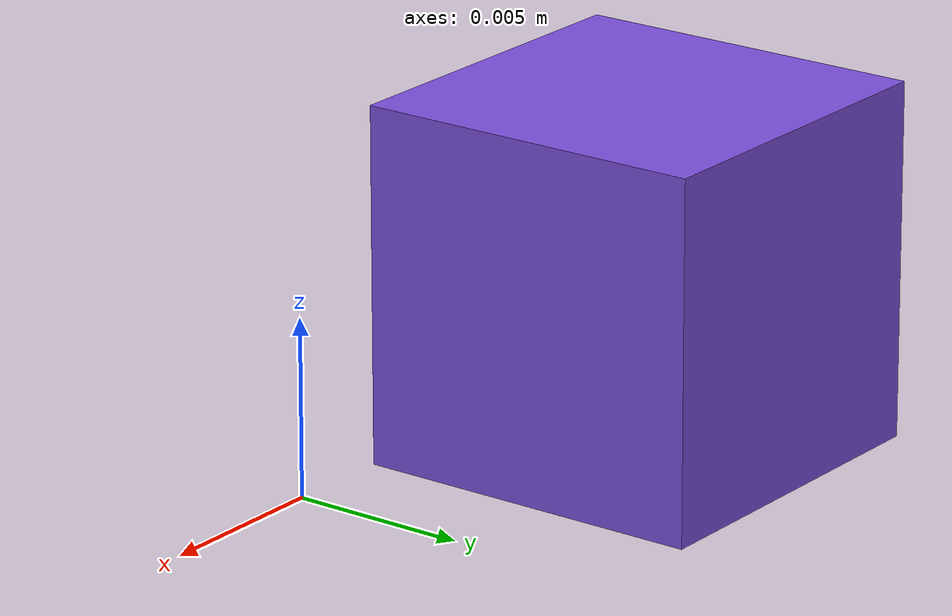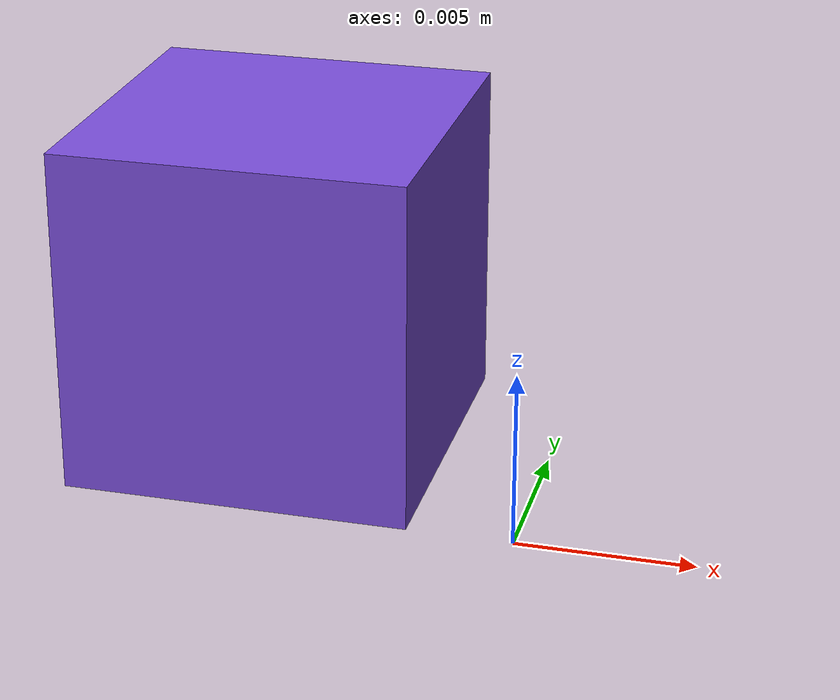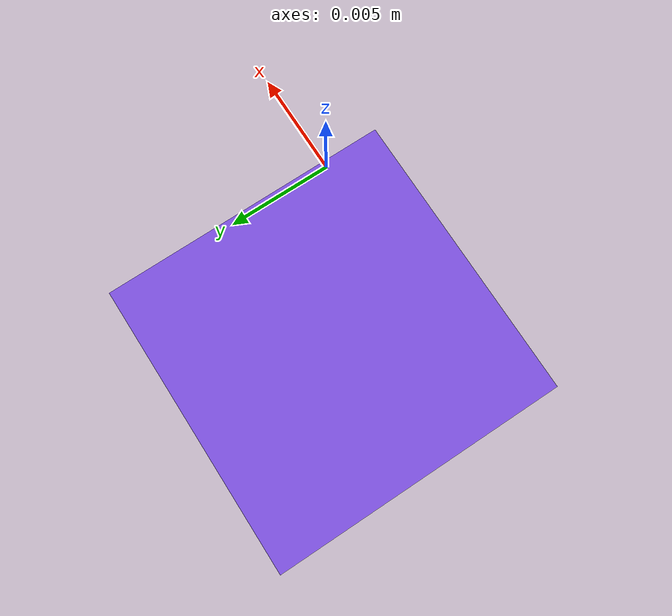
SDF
<?xml version='1.0'?>
<sdf version="1.4">
  <model name="Cube003">
    <link name="Cube003">
    <gravity>0</gravity>
      <collision name="collision">
        <mesh>
          <uri>model://meshes/Cube003.dae</uri>
        </mesh>
      </collision>
      <visual name="visual">
        <geometry>
          <mesh>
            <uri>model://meshes/Cube003.dae</uri>
          </mesh>
        </geometry>
        <surface>
          <friction>
            <ode>
              <mu>0.0</mu>
            </ode>
          </friction>
        </surface>
      </visual>
  </link>
  </model>
</sdf>
